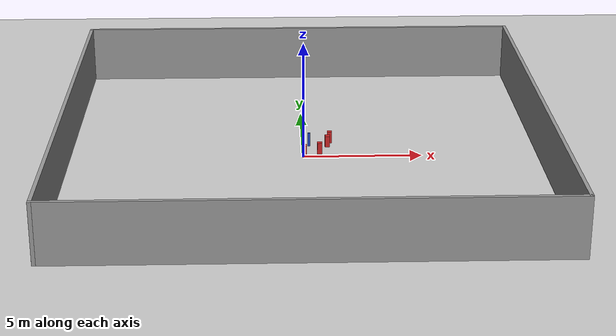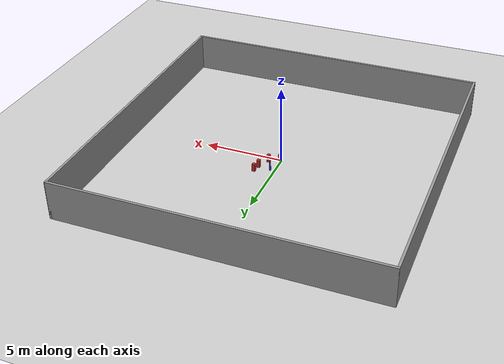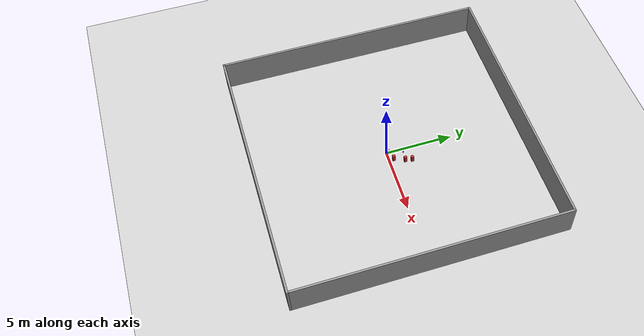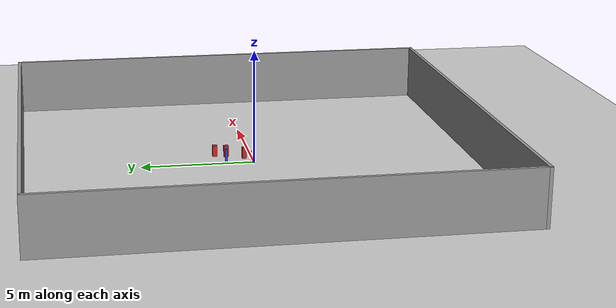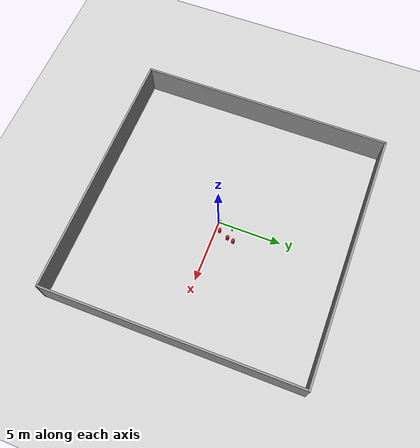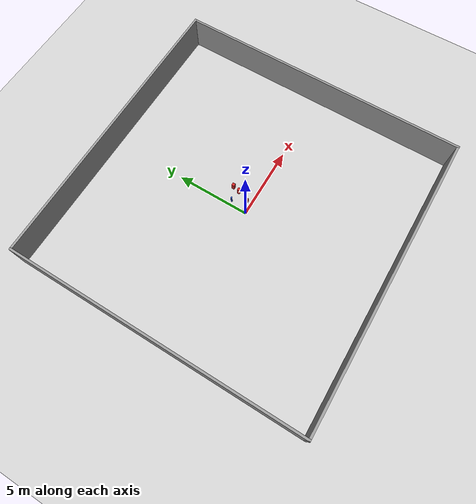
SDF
<sdf version="1.6">
 <world name="default">
  <model name="ground_plane">
   <static>1</static>
   <link name="link">
    <collision name="collision">
     <geometry><plane><normal>0 0 1</normal><size>100 100</size></plane></geometry>
     <surface><friction><ode><mu>100</mu><mu2>50</mu2></ode></friction></surface>
    </collision>
    <visual name="visual">
     <cast_shadows>0</cast_shadows>
     <geometry><plane><normal>0 0 1</normal><size>100 100</size></plane></geometry>
     <material>
      <ambient>1.0 1.0 1.0 1.0</ambient>
      <diffuse>0.8 0.8 0.8 1.0</diffuse>
      <specular>0.01 0.01 0.01 1.000000</specular>
     </material>
    </visual>
   </link>
  </model>
  <model name="20x20_walls">
   <pose>0.044518 0.176112 0 0 -0 0</pose>
   <link name="Wall_1">
    <collision name="Wall_1_Collision">
     <geometry><box><size>20 0.15 2.5</size></box></geometry>
     <pose>0 0 1.25 0 -0 0</pose>
    </collision>
    <visual name="Wall_1_Visual">
     <pose>0 0 1.25 0 -0 0</pose>
     <geometry><box><size>20 0.15 2.5</size></box></geometry>
     <material>
      <script><uri>file://media/materials/scripts/gazebo.material</uri><name>Gazebo/Grey</name></script>
      <ambient>0.976471 0.992157 1 1</ambient>
     </material>
     <meta><layer>0</layer></meta>
    </visual>
    <pose>0 9.925 0 0 -0 0</pose>
   </link>
   <link name="Wall_3">
    <collision name="Wall_3_Collision">
     <geometry><box><size>20 0.15 2.5</size></box></geometry>
     <pose>0 0 1.25 0 -0 0</pose>
    </collision>
    <visual name="Wall_3_Visual">
     <pose>0 0 1.25 0 -0 0</pose>
     <geometry><box><size>20 0.15 2.5</size></box></geometry>
     <material>
      <script><uri>file://media/materials/scripts/gazebo.material</uri><name>Gazebo/Grey</name></script>
      <ambient>0.976471 0.992157 1 1</ambient>
     </material>
     <meta><layer>0</layer></meta>
    </visual>
    <pose>9.925 0 0 0 0 -1.5708</pose>
   </link>
   <link name="Wall_4">
    <collision name="Wall_4_Collision">
     <geometry><box><size>20 0.15 2.5</size></box></geometry>
     <pose>0 0 1.25 0 -0 0</pose>
    </collision>
    <visual name="Wall_4_Visual">
     <pose>0 0 1.25 0 -0 0</pose>
     <geometry><box><size>20 0.15 2.5</size></box></geometry>
     <material>
      <script><uri>file://media/materials/scripts/gazebo.material</uri><name>Gazebo/Grey</name></script>
      <ambient>0.976471 0.992157 1 1</ambient>
     </material>
     <meta><layer>0</layer></meta>
    </visual>
    <pose>0 -9.925 0 0 -0 3.14159</pose>
   </link>
   <link name="Wall_5">
    <collision name="Wall_5_Collision">
     <geometry><box><size>20 0.15 2.5</size></box></geometry>
     <pose>0 0 1.25 0 -0 0</pose>
    </collision>
    <visual name="Wall_5_Visual">
     <pose>0 0 1.25 0 -0 0</pose>
     <geometry><box><size>20 0.15 2.5</size></box></geometry>
     <material>
      <script><uri>file://media/materials/scripts/gazebo.material</uri><name>Gazebo/Grey</name></script>
      <ambient>0.976471 0.992157 1 1</ambient>
     </material>
     <meta><layer>0</layer></meta>
    </visual>
    <pose>-9.925 0 0 0 -0 1.5708</pose>
   </link>
   <static>1</static>
  </model>
  <model name="square_post_obstacle66">
   <static>true</static>
   <pose>1.16872407727 1.60637170319 1.91545236811e-07 -7.35059704564e-06 1.12565212e-07 2.39332434364e-05</pose>
   <link name="link">
    <pose>0 0 0.25 0 -0 0</pose>
    <inertial>
     <mass>100</mass>
     <inertia>
      <ixx>0.166667</ixx>
      <ixy>0</ixy>
      <ixz>0</ixz>
      <iyy>0.166667</iyy>
      <iyz>0</iyz>
      <izz>0.166667</izz>
     </inertia>
    </inertial>
    <collision name="collision"><geometry><box><size>.2 .2 .5</size></box></geometry></collision>
    <visual name="visual">
     <geometry><box><size>.2 .2 .5</size></box></geometry>
     <material>
      <script><name>Gazebo/Red</name><uri>file://media/materials/scripts/gazebo.material</uri></script>
     </material>
    </visual>
   </link>
  </model>
  <model name="pole_obstacle96">
   <static>true</static>
   <pose>0.270935388706 1.20584516179 7.38925637345e-09 -8.47170692799e-08 1.24976765073e-08 -1.74513093015e-07</pose>
   <link name="link">
    <pose>0 0 0.3 0 -0 0</pose>
    <inertial>
     <mass>1</mass>
     <inertia><ixx>0.145833</ixx><ixy>0</ixy><ixz>0</ixz><iyy>0.145833</iyy><iyz>0</iyz><izz>0.125</izz></inertia>
    </inertial>
    <collision name="collision">
     <geometry><cylinder><radius>0.05</radius><length>.6</length></cylinder></geometry>
    </collision>
    <visual name="visual">
     <geometry><cylinder><radius>0.05</radius><length>.6</length></cylinder></geometry>
     <material>
      <script><name>Gazebo/Blue</name><uri>file://media/materials/scripts/gazebo.material</uri></script>
     </material>
    </visual>
   </link>
  </model>
  <model name="square_post_obstacle94">
   <static>true</static>
   <pose>0.703124214271 0.343905633906 1.91545236811e-07 -7.35059704564e-06 1.12565212e-07 2.39332434364e-05</pose>
   <link name="link">
    <pose>0 0 0.25 0 -0 0</pose>
    <inertial>
     <mass>100</mass>
     <inertia>
      <ixx>0.166667</ixx>
      <ixy>0</ixy>
      <ixz>0</ixz>
      <iyy>0.166667</iyy>
      <iyz>0</iyz>
      <izz>0.166667</izz>
     </inertia>
    </inertial>
    <collision name="collision"><geometry><box><size>.2 .2 .5</size></box></geometry></collision>
    <visual name="visual">
     <geometry><box><size>.2 .2 .5</size></box></geometry>
     <material>
      <script><name>Gazebo/Red</name><uri>file://media/materials/scripts/gazebo.material</uri></script>
     </material>
    </visual>
   </link>
  </model>
  <model name="square_post_obstacle156">
   <static>true</static>
   <pose>0.04848842098 0.0736525338243 1.91545236811e-07 -7.35059704564e-06 1.12565212e-07 2.39332434364e-05</pose>
   <link name="link">
    <pose>0 0 0.25 0 -0 0</pose>
    <inertial>
     <mass>100</mass>
     <inertia>
      <ixx>0.166667</ixx>
      <ixy>0</ixy>
      <ixz>0</ixz>
      <iyy>0.166667</iyy>
      <iyz>0</iyz>
      <izz>0.166667</izz>
     </inertia>
    </inertial>
    <collision name="collision"><geometry><box><size>.2 .2 .5</size></box></geometry></collision>
    <visual name="visual">
     <geometry><box><size>.2 .2 .5</size></box></geometry>
     <material>
      <script><name>Gazebo/Red</name><uri>file://media/materials/scripts/gazebo.material</uri></script>
     </material>
    </visual>
   </link>
  </model>
  <model name="square_post_obstacle166">
   <static>true</static>
   <pose>1.05758008968 1.11767447746 1.91545236811e-07 -7.35059704564e-06 1.12565212e-07 2.39332434364e-05</pose>
   <link name="link">
    <pose>0 0 0.25 0 -0 0</pose>
    <inertial>
     <mass>100</mass>
     <inertia>
      <ixx>0.166667</ixx>
      <ixy>0</ixy>
      <ixz>0</ixz>
      <iyy>0.166667</iyy>
      <iyz>0</iyz>
      <izz>0.166667</izz>
     </inertia>
    </inertial>
    <collision name="collision"><geometry><box><size>.2 .2 .5</size></box></geometry></collision>
    <visual name="visual">
     <geometry><box><size>.2 .2 .5</size></box></geometry>
     <material>
      <script><name>Gazebo/Red</name><uri>file://media/materials/scripts/gazebo.material</uri></script>
     </material>
    </visual>
   </link>
  </model>
 </world>
</sdf>
